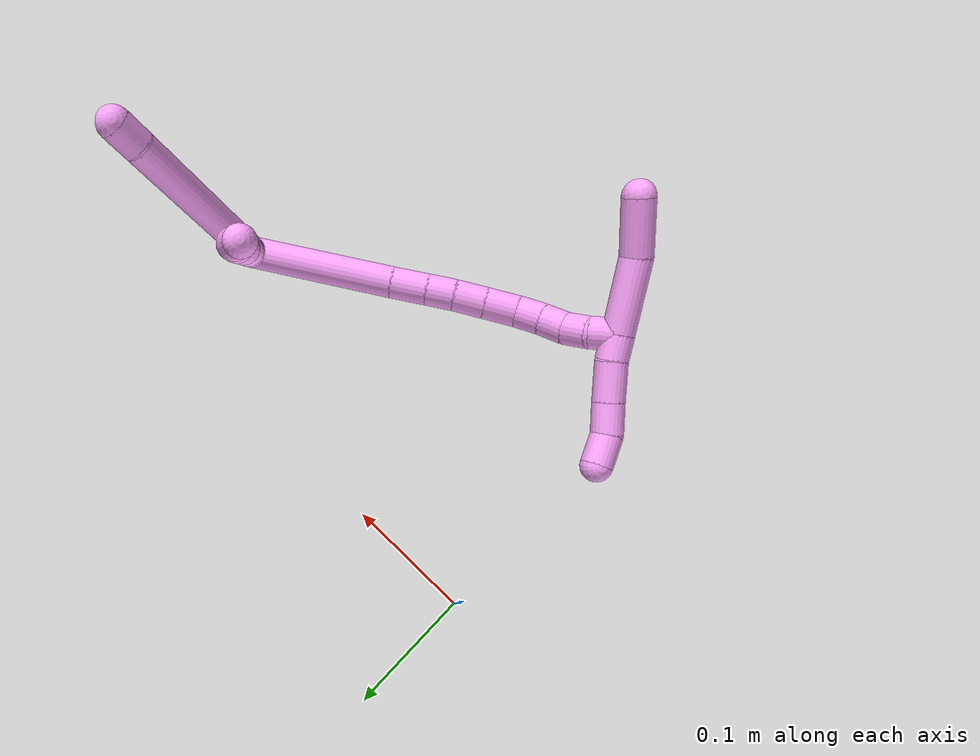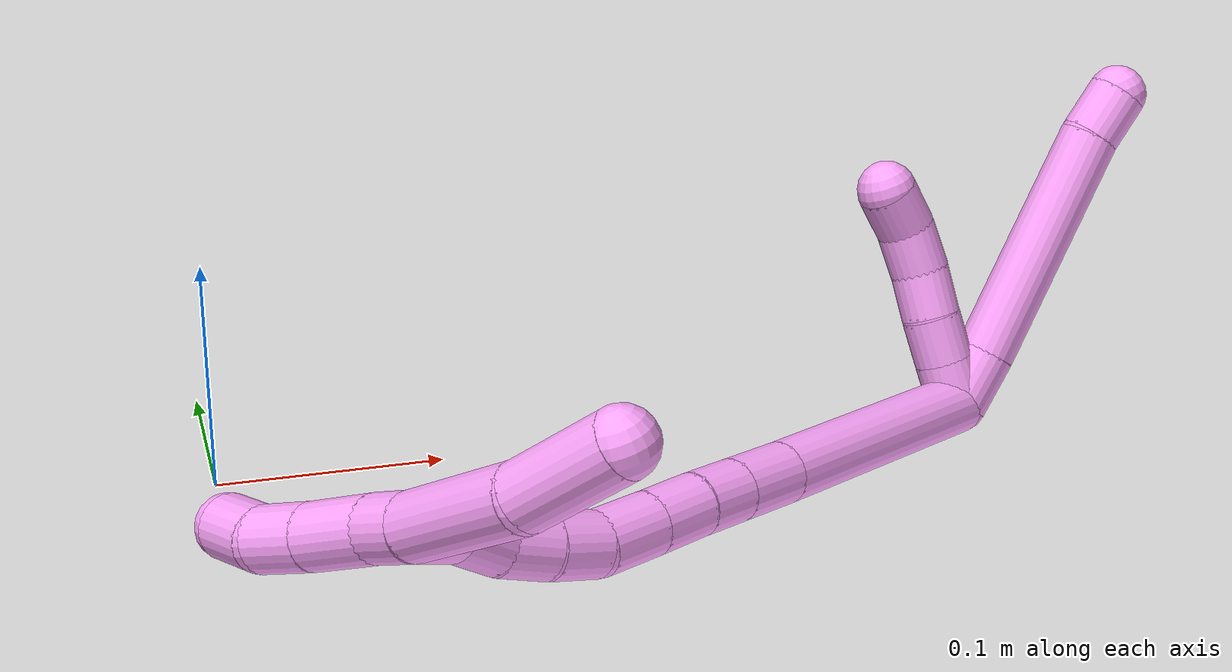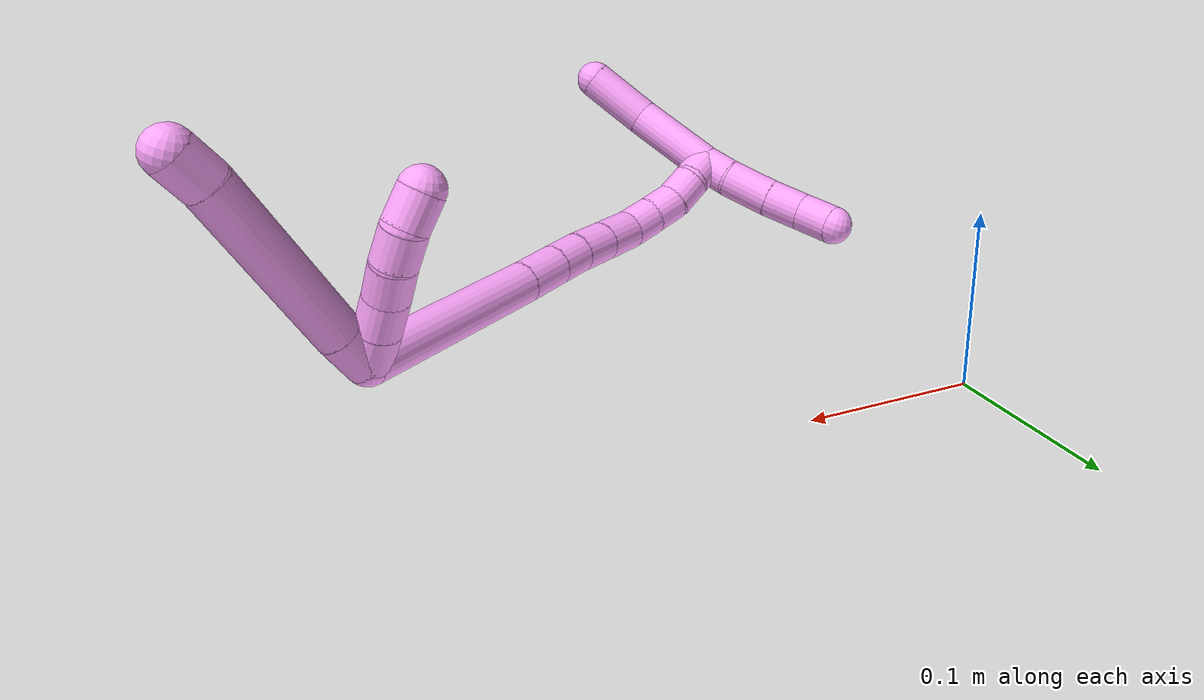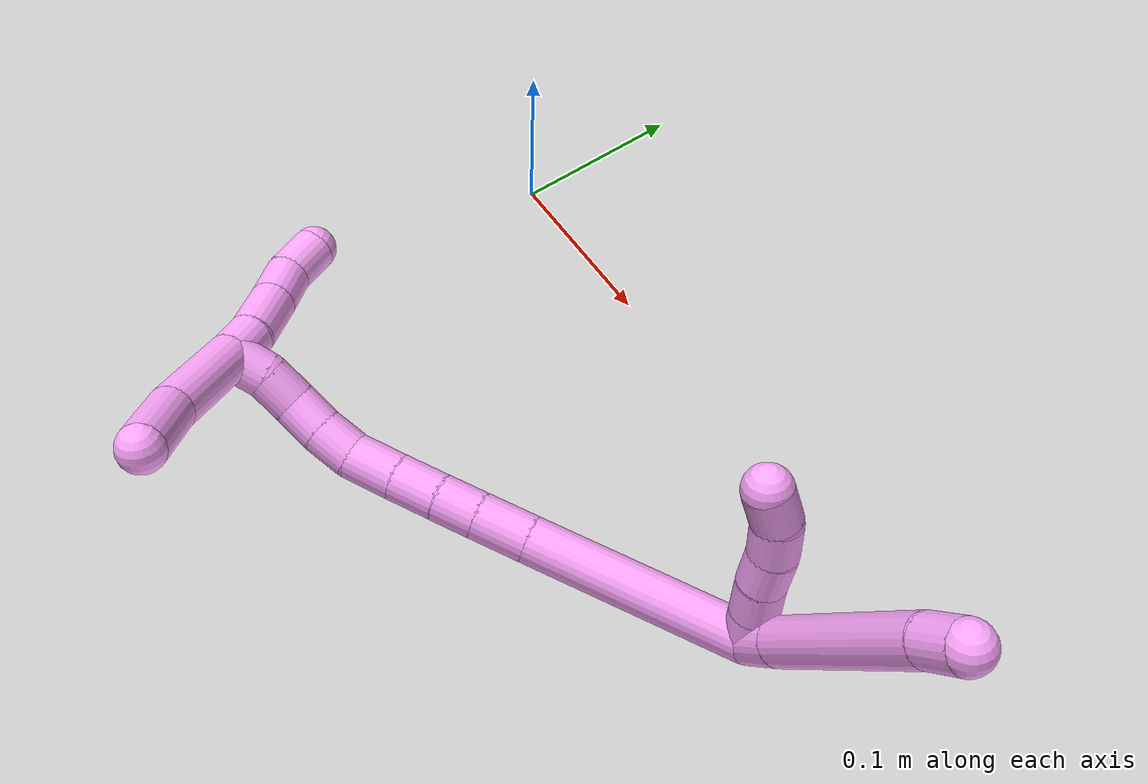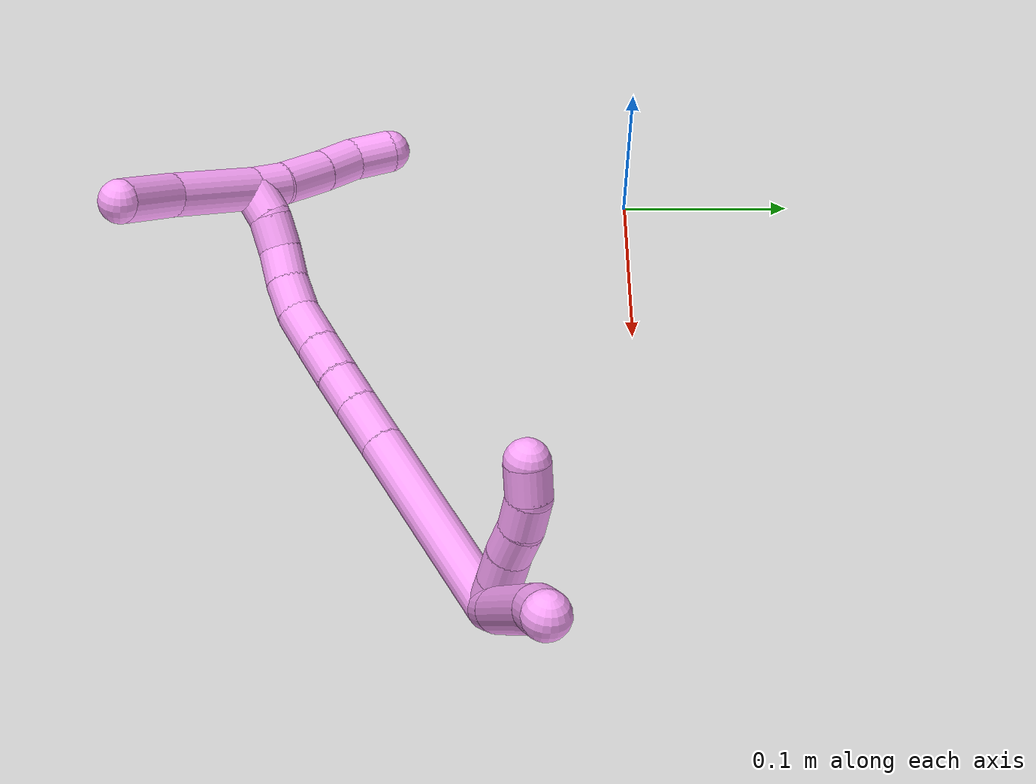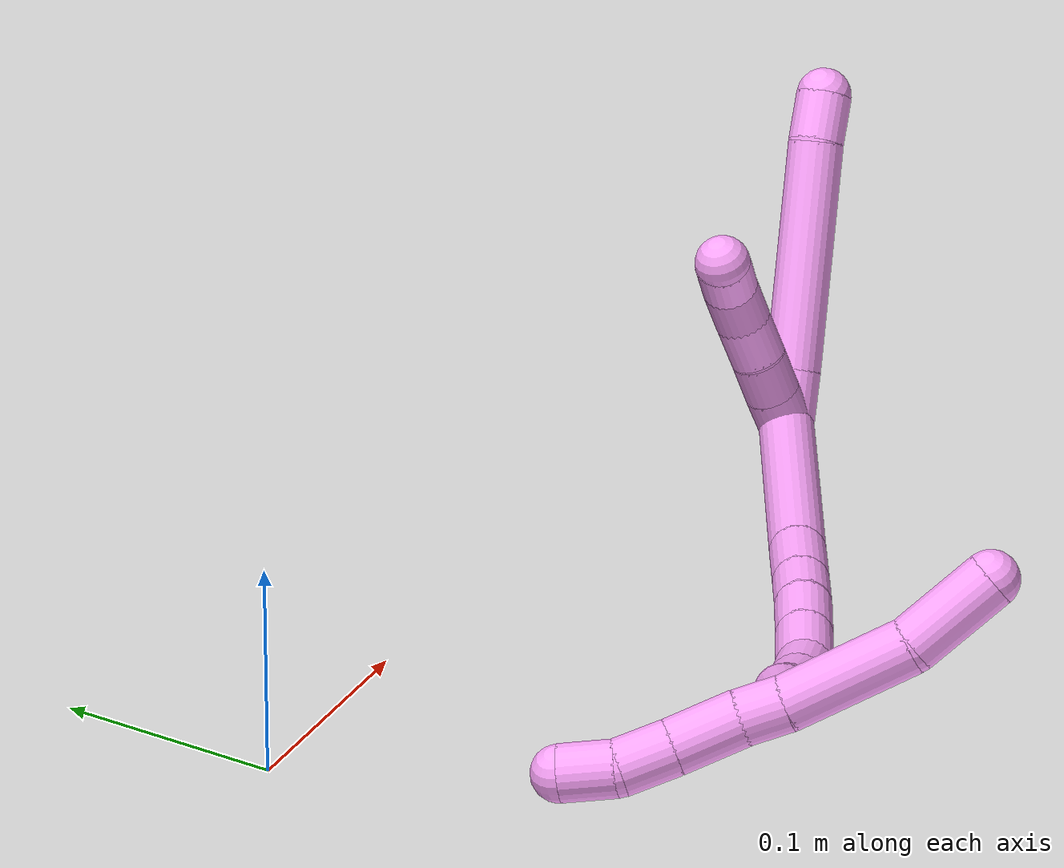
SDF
<sdf version="1.7">
 <world name="default">
  <model name="4">
   <static>0</static>
   <link name="4">
    <collision name="collision-cylinder-e_1_2_8">
     <pose>0.007929 0.00556 -0.007636 -2.51221 0.698289 -1.68249</pose>
     <geometry><cylinder><radius>0.0125</radius><length>0.024665</length></cylinder></geometry>
     <surface>
      <friction><ode><mu>1.16</mu><mu2>1.16</mu2><slip1>0</slip1><slip2>0</slip2></ode></friction>
      <contact><ode><kp>1e+06</kp><kd>1</kd><max_vel>0</max_vel><min_depth>0.001</min_depth></ode></contact>
     </surface>
    </collision>
    <visual name="visual-cylinder-e_1_2_8">
     <pose>0.007929 0.00556 -0.007636 -2.51221 0.698289 -1.68249</pose>
     <geometry><cylinder><radius>0.0125</radius><length>0.024665</length></cylinder></geometry>
     <material><ambient>1 0.65098 0.996078 1</ambient></material>
    </visual>
    <collision name="collision-cylinder-e_2_8_9">
     <pose>0.047034 0.033325 -0.049908 -2.5715 0.648469 -1.7075</pose>
     <geometry><cylinder><radius>0.0125</radius><length>0.103241</length></cylinder></geometry>
     <surface>
      <friction><ode><mu>1.16</mu><mu2>1.16</mu2><slip1>0</slip1><slip2>0</slip2></ode></friction>
      <contact><ode><kp>1e+06</kp><kd>1</kd><max_vel>0</max_vel><min_depth>0.001</min_depth></ode></contact>
     </surface>
    </collision>
    <visual name="visual-cylinder-e_2_8_9">
     <pose>0.047034 0.033325 -0.049908 -2.5715 0.648469 -1.7075</pose>
     <geometry><cylinder><radius>0.0125</radius><length>0.103241</length></cylinder></geometry>
     <material><ambient>1 0.65098 0.996078 1</ambient></material>
    </visual>
    <collision name="collision-cylinder-e_3_9_6">
     <pose>0.08556 0.060967 -0.090747 -2.42202 0.727756 -1.58315</pose>
     <geometry><cylinder><radius>0.0125</radius><length>0.022094</length></cylinder></geometry>
     <surface>
      <friction><ode><mu>1.16</mu><mu2>1.16</mu2><slip1>0</slip1><slip2>0</slip2></ode></friction>
      <contact><ode><kp>1e+06</kp><kd>1</kd><max_vel>0</max_vel><min_depth>0.001</min_depth></ode></contact>
     </surface>
    </collision>
    <visual name="visual-cylinder-e_3_9_6">
     <pose>0.08556 0.060967 -0.090747 -2.42202 0.727756 -1.58315</pose>
     <geometry><cylinder><radius>0.0125</radius><length>0.022094</length></cylinder></geometry>
     <material><ambient>1 0.65098 0.996078 1</ambient></material>
    </visual>
    <collision name="collision-cylinder-e_1_2_10">
     <pose>0.001454 -0.000859 -0.009856 3.05471 0.145967 2.0688</pose>
     <geometry><cylinder><radius>0.0125</radius><length>0.02</length></cylinder></geometry>
     <surface>
      <friction><ode><mu>1.16</mu><mu2>1.16</mu2><slip1>0</slip1><slip2>0</slip2></ode></friction>
      <contact><ode><kp>1e+06</kp><kd>1</kd><max_vel>0</max_vel><min_depth>0.001</min_depth></ode></contact>
     </surface>
    </collision>
    <visual name="visual-cylinder-e_1_2_10">
     <pose>0.001454 -0.000859 -0.009856 3.05471 0.145967 2.0688</pose>
     <geometry><cylinder><radius>0.0125</radius><length>0.02</length></cylinder></geometry>
     <material><ambient>1 0.65098 0.996078 1</ambient></material>
    </visual>
    <collision name="collision-cylinder-e_2_10_11">
     <pose>0.004255 -0.002335 -0.029602 3.07915 0.134987 2.27595</pose>
     <geometry><cylinder><radius>0.0125</radius><length>0.02</length></cylinder></geometry>
     <surface>
      <friction><ode><mu>1.16</mu><mu2>1.16</mu2><slip1>0</slip1><slip2>0</slip2></ode></friction>
      <contact><ode><kp>1e+06</kp><kd>1</kd><max_vel>0</max_vel><min_depth>0.001</min_depth></ode></contact>
     </surface>
    </collision>
    <visual name="visual-cylinder-e_2_10_11">
     <pose>0.004255 -0.002335 -0.029602 3.07915 0.134987 2.27595</pose>
     <geometry><cylinder><radius>0.0125</radius><length>0.02</length></cylinder></geometry>
     <material><ambient>1 0.65098 0.996078 1</ambient></material>
    </visual>
    <collision name="collision-cylinder-e_3_11_12">
     <pose>0.007926 -0.0037 -0.049189 3.06476 0.234679 2.5112</pose>
     <geometry><cylinder><radius>0.0125</radius><length>0.02</length></cylinder></geometry>
     <surface>
      <friction><ode><mu>1.16</mu><mu2>1.16</mu2><slip1>0</slip1><slip2>0</slip2></ode></friction>
      <contact><ode><kp>1e+06</kp><kd>1</kd><max_vel>0</max_vel><min_depth>0.001</min_depth></ode></contact>
     </surface>
    </collision>
    <visual name="visual-cylinder-e_3_11_12">
     <pose>0.007926 -0.0037 -0.049189 3.06476 0.234679 2.5112</pose>
     <geometry><cylinder><radius>0.0125</radius><length>0.02</length></cylinder></geometry>
     <material><ambient>1 0.65098 0.996078 1</ambient></material>
    </visual>
    <collision name="collision-cylinder-e_4_12_13">
     <pose>0.010912 -0.005081 -0.068845 3.07801 0.066084 1.60946</pose>
     <geometry><cylinder><radius>0.0125</radius><length>0.02</length></cylinder></geometry>
     <surface>
      <friction><ode><mu>1.16</mu><mu2>1.16</mu2><slip1>0</slip1><slip2>0</slip2></ode></friction>
      <contact><ode><kp>1e+06</kp><kd>1</kd><max_vel>0</max_vel><min_depth>0.001</min_depth></ode></contact>
     </surface>
    </collision>
    <visual name="visual-cylinder-e_4_12_13">
     <pose>0.010912 -0.005081 -0.068845 3.07801 0.066084 1.60946</pose>
     <geometry><cylinder><radius>0.0125</radius><length>0.02</length></cylinder></geometry>
     <material><ambient>1 0.65098 0.996078 1</ambient></material>
    </visual>
    <collision name="collision-cylinder-e_5_13_5">
     <pose>0.009124 -0.005909 -0.088496 3.12156 -0.247259 -2.98076</pose>
     <geometry><cylinder><radius>0.0125</radius><length>0.02</length></cylinder></geometry>
     <surface>
      <friction><ode><mu>1.16</mu><mu2>1.16</mu2><slip1>0</slip1><slip2>0</slip2></ode></friction>
      <contact><ode><kp>1e+06</kp><kd>1</kd><max_vel>0</max_vel><min_depth>0.001</min_depth></ode></contact>
     </surface>
    </collision>
    <visual name="visual-cylinder-e_5_13_5">
     <pose>0.009124 -0.005909 -0.088496 3.12156 -0.247259 -2.98076</pose>
     <geometry><cylinder><radius>0.0125</radius><length>0.02</length></cylinder></geometry>
     <material><ambient>1 0.65098 0.996078 1</ambient></material>
    </visual>
    <collision name="collision-cylinder-e_1_2_14">
     <pose>-0.055593 -0.010012 -0.014949 2.55145 -1.25779 -2.35002</pose>
     <geometry><cylinder><radius>0.0125</radius><length>0.116864</length></cylinder></geometry>
     <surface>
      <friction><ode><mu>1.16</mu><mu2>1.16</mu2><slip1>0</slip1><slip2>0</slip2></ode></friction>
      <contact><ode><kp>1e+06</kp><kd>1</kd><max_vel>0</max_vel><min_depth>0.001</min_depth></ode></contact>
     </surface>
    </collision>
    <visual name="visual-cylinder-e_1_2_14">
     <pose>-0.055593 -0.010012 -0.014949 2.55145 -1.25779 -2.35002</pose>
     <geometry><cylinder><radius>0.0125</radius><length>0.116864</length></cylinder></geometry>
     <material><ambient>1 0.65098 0.996078 1</ambient></material>
    </visual>
    <collision name="collision-cylinder-e_2_14_15">
     <pose>-0.124736 -0.022301 -0.03385 2.61898 -1.24612 -2.42901</pose>
     <geometry><cylinder><radius>0.0125</radius><length>0.028594</length></cylinder></geometry>
     <surface>
      <friction><ode><mu>1.16</mu><mu2>1.16</mu2><slip1>0</slip1><slip2>0</slip2></ode></friction>
      <contact><ode><kp>1e+06</kp><kd>1</kd><max_vel>0</max_vel><min_depth>0.001</min_depth></ode></contact>
     </surface>
    </collision>
    <visual name="visual-cylinder-e_2_14_15">
     <pose>-0.124736 -0.022301 -0.03385 2.61898 -1.24612 -2.42901</pose>
     <geometry><cylinder><radius>0.0125</radius><length>0.028594</length></cylinder></geometry>
     <material><ambient>1 0.65098 0.996078 1</ambient></material>
    </visual>
    <collision name="collision-cylinder-e_3_15_16">
     <pose>-0.148723 -0.026387 -0.040839 2.60422 -1.24416 -2.40833</pose>
     <geometry><cylinder><radius>0.0125</radius><length>0.022038</length></cylinder></geometry>
     <surface>
      <friction><ode><mu>1.16</mu><mu2>1.16</mu2><slip1>0</slip1><slip2>0</slip2></ode></friction>
      <contact><ode><kp>1e+06</kp><kd>1</kd><max_vel>0</max_vel><min_depth>0.001</min_depth></ode></contact>
     </surface>
    </collision>
    <visual name="visual-cylinder-e_3_15_16">
     <pose>-0.148723 -0.026387 -0.040839 2.60422 -1.24416 -2.40833</pose>
     <geometry><cylinder><radius>0.0125</radius><length>0.022038</length></cylinder></geometry>
     <material><ambient>1 0.65098 0.996078 1</ambient></material>
    </visual>
    <collision name="collision-cylinder-e_4_16_17">
     <pose>-0.170799 -0.030713 -0.046737 2.42021 -1.25453 -2.18206</pose>
     <geometry><cylinder><radius>0.0125</radius><length>0.024495</length></cylinder></geometry>
     <surface>
      <friction><ode><mu>1.16</mu><mu2>1.16</mu2><slip1>0</slip1><slip2>0</slip2></ode></friction>
      <contact><ode><kp>1e+06</kp><kd>1</kd><max_vel>0</max_vel><min_depth>0.001</min_depth></ode></contact>
     </surface>
    </collision>
    <visual name="visual-cylinder-e_4_16_17">
     <pose>-0.170799 -0.030713 -0.046737 2.42021 -1.25453 -2.18206</pose>
     <geometry><cylinder><radius>0.0125</radius><length>0.024495</length></cylinder></geometry>
     <material><ambient>1 0.65098 0.996078 1</ambient></material>
    </visual>
    <collision name="collision-cylinder-e_5_17_18">
     <pose>-0.194818 -0.035979 -0.05282 2.43517 -1.24105 -2.18912</pose>
     <geometry><cylinder><radius>0.0125</radius><length>0.026168</length></cylinder></geometry>
     <surface>
      <friction><ode><mu>1.16</mu><mu2>1.16</mu2><slip1>0</slip1><slip2>0</slip2></ode></friction>
      <contact><ode><kp>1e+06</kp><kd>1</kd><max_vel>0</max_vel><min_depth>0.001</min_depth></ode></contact>
     </surface>
    </collision>
    <visual name="visual-cylinder-e_5_17_18">
     <pose>-0.194818 -0.035979 -0.05282 2.43517 -1.24105 -2.18912</pose>
     <geometry><cylinder><radius>0.0125</radius><length>0.026168</length></cylinder></geometry>
     <material><ambient>1 0.65098 0.996078 1</ambient></material>
    </visual>
    <collision name="collision-cylinder-e_6_18_19">
     <pose>-0.216018 -0.041619 -0.061004 2.61403 -0.993758 -2.21741</pose>
     <geometry><cylinder><radius>0.0125</radius><length>0.021049</length></cylinder></geometry>
     <surface>
      <friction><ode><mu>1.16</mu><mu2>1.16</mu2><slip1>0</slip1><slip2>0</slip2></ode></friction>
      <contact><ode><kp>1e+06</kp><kd>1</kd><max_vel>0</max_vel><min_depth>0.001</min_depth></ode></contact>
     </surface>
    </collision>
    <visual name="visual-cylinder-e_6_18_19">
     <pose>-0.216018 -0.041619 -0.061004 2.61403 -0.993758 -2.21741</pose>
     <geometry><cylinder><radius>0.0125</radius><length>0.021049</length></cylinder></geometry>
     <material><ambient>1 0.65098 0.996078 1</ambient></material>
    </visual>
    <collision name="collision-cylinder-e_7_19_20">
     <pose>-0.232527 -0.047825 -0.071544 2.60551 -0.869699 -2.07362</pose>
     <geometry><cylinder><radius>0.0125</radius><length>0.020123</length></cylinder></geometry>
     <surface>
      <friction><ode><mu>1.16</mu><mu2>1.16</mu2><slip1>0</slip1><slip2>0</slip2></ode></friction>
      <contact><ode><kp>1e+06</kp><kd>1</kd><max_vel>0</max_vel><min_depth>0.001</min_depth></ode></contact>
     </surface>
    </collision>
    <visual name="visual-cylinder-e_7_19_20">
     <pose>-0.232527 -0.047825 -0.071544 2.60551 -0.869699 -2.07362</pose>
     <geometry><cylinder><radius>0.0125</radius><length>0.020123</length></cylinder></geometry>
     <material><ambient>1 0.65098 0.996078 1</ambient></material>
    </visual>
    <collision name="collision-cylinder-e_8_20_21">
     <pose>-0.247124 -0.052605 -0.084262 2.93916 -0.75877 -2.64272</pose>
     <geometry><cylinder><radius>0.0125</radius><length>0.020083</length></cylinder></geometry>
     <surface>
      <friction><ode><mu>1.16</mu><mu2>1.16</mu2><slip1>0</slip1><slip2>0</slip2></ode></friction>
      <contact><ode><kp>1e+06</kp><kd>1</kd><max_vel>0</max_vel><min_depth>0.001</min_depth></ode></contact>
     </surface>
    </collision>
    <visual name="visual-cylinder-e_8_20_21">
     <pose>-0.247124 -0.052605 -0.084262 2.93916 -0.75877 -2.64272</pose>
     <geometry><cylinder><radius>0.0125</radius><length>0.020083</length></cylinder></geometry>
     <material><ambient>1 0.65098 0.996078 1</ambient></material>
    </visual>
    <collision name="collision-cylinder-e_9_21_1">
     <pose>-0.262798 -0.054466 -0.096782 3.06816 -1.01899 -3.01029</pose>
     <geometry><cylinder><radius>0.0125</radius><length>0.020585</length></cylinder></geometry>
     <surface>
      <friction><ode><mu>1.16</mu><mu2>1.16</mu2><slip1>0</slip1><slip2>0</slip2></ode></friction>
      <contact><ode><kp>1e+06</kp><kd>1</kd><max_vel>0</max_vel><min_depth>0.001</min_depth></ode></contact>
     </surface>
    </collision>
    <visual name="visual-cylinder-e_9_21_1">
     <pose>-0.262798 -0.054466 -0.096782 3.06816 -1.01899 -3.01029</pose>
     <geometry><cylinder><radius>0.0125</radius><length>0.020585</length></cylinder></geometry>
     <material><ambient>1 0.65098 0.996078 1</ambient></material>
    </visual>
    <collision name="collision-cylinder-e_1_1_22">
     <pose>-0.270108 -0.06481 -0.101176 1.47197 0.144565 0.130982</pose>
     <geometry><cylinder><radius>0.0125</radius><length>0.020205</length></cylinder></geometry>
     <surface>
      <friction><ode><mu>1.16</mu><mu2>1.16</mu2><slip1>0</slip1><slip2>0</slip2></ode></friction>
      <contact><ode><kp>1e+06</kp><kd>1</kd><max_vel>0</max_vel><min_depth>0.001</min_depth></ode></contact>
     </surface>
    </collision>
    <visual name="visual-cylinder-e_1_1_22">
     <pose>-0.270108 -0.06481 -0.101176 1.47197 0.144565 0.130982</pose>
     <geometry><cylinder><radius>0.0125</radius><length>0.020205</length></cylinder></geometry>
     <material><ambient>1 0.65098 0.996078 1</ambient></material>
    </visual>
    <collision name="collision-cylinder-e_2_22_23">
     <pose>-0.268932 -0.090171 -0.09915 1.50343 -0.018116 -0.016935</pose>
     <geometry><cylinder><radius>0.0125</radius><length>0.030901</length></cylinder></geometry>
     <surface>
      <friction><ode><mu>1.16</mu><mu2>1.16</mu2><slip1>0</slip1><slip2>0</slip2></ode></friction>
      <contact><ode><kp>1e+06</kp><kd>1</kd><max_vel>0</max_vel><min_depth>0.001</min_depth></ode></contact>
     </surface>
    </collision>
    <visual name="visual-cylinder-e_2_22_23">
     <pose>-0.268932 -0.090171 -0.09915 1.50343 -0.018116 -0.016935</pose>
     <geometry><cylinder><radius>0.0125</radius><length>0.030901</length></cylinder></geometry>
     <material><ambient>1 0.65098 0.996078 1</ambient></material>
    </visual>
    <collision name="collision-cylinder-e_3_23_24">
     <pose>-0.269471 -0.117804 -0.098002 1.56197 -0.021229 -0.021042</pose>
     <geometry><cylinder><radius>0.0125</radius><length>0.024445</length></cylinder></geometry>
     <surface>
      <friction><ode><mu>1.16</mu><mu2>1.16</mu2><slip1>0</slip1><slip2>0</slip2></ode></friction>
      <contact><ode><kp>1e+06</kp><kd>1</kd><max_vel>0</max_vel><min_depth>0.001</min_depth></ode></contact>
     </surface>
    </collision>
    <visual name="visual-cylinder-e_3_23_24">
     <pose>-0.269471 -0.117804 -0.098002 1.56197 -0.021229 -0.021042</pose>
     <geometry><cylinder><radius>0.0125</radius><length>0.024445</length></cylinder></geometry>
     <material><ambient>1 0.65098 0.996078 1</ambient></material>
    </visual>
    <collision name="collision-cylinder-e_4_24_4">
     <pose>-0.26609 -0.141666 -0.098685 1.63863 0.302379 0.323263</pose>
     <geometry><cylinder><radius>0.0125</radius><length>0.024449</length></cylinder></geometry>
     <surface>
      <friction><ode><mu>1.16</mu><mu2>1.16</mu2><slip1>0</slip1><slip2>0</slip2></ode></friction>
      <contact><ode><kp>1e+06</kp><kd>1</kd><max_vel>0</max_vel><min_depth>0.001</min_depth></ode></contact>
     </surface>
    </collision>
    <visual name="visual-cylinder-e_4_24_4">
     <pose>-0.26609 -0.141666 -0.098685 1.63863 0.302379 0.323263</pose>
     <geometry><cylinder><radius>0.0125</radius><length>0.024449</length></cylinder></geometry>
     <material><ambient>1 0.65098 0.996078 1</ambient></material>
    </visual>
    <collision name="collision-cylinder-e_1_1_25">
     <pose>-0.274083 -0.027005 -0.108285 -1.78714 -0.088121 0.109554</pose>
     <geometry><cylinder><radius>0.0125</radius><length>0.057266</length></cylinder></geometry>
     <surface>
      <friction><ode><mu>1.16</mu><mu2>1.16</mu2><slip1>0</slip1><slip2>0</slip2></ode></friction>
      <contact><ode><kp>1e+06</kp><kd>1</kd><max_vel>0</max_vel><min_depth>0.001</min_depth></ode></contact>
     </surface>
    </collision>
    <visual name="visual-cylinder-e_1_1_25">
     <pose>-0.274083 -0.027005 -0.108285 -1.78714 -0.088121 0.109554</pose>
     <geometry><cylinder><radius>0.0125</radius><length>0.057266</length></cylinder></geometry>
     <material><ambient>1 0.65098 0.996078 1</ambient></material>
    </visual>
    <collision name="collision-cylinder-e_2_25_3">
     <pose>-0.273109 0.020842 -0.121099 -1.89378 0.16424 -0.227694</pose>
     <geometry><cylinder><radius>0.0125</radius><length>0.042734</length></cylinder></geometry>
     <surface>
      <friction><ode><mu>1.16</mu><mu2>1.16</mu2><slip1>0</slip1><slip2>0</slip2></ode></friction>
      <contact><ode><kp>1e+06</kp><kd>1</kd><max_vel>0</max_vel><min_depth>0.001</min_depth></ode></contact>
     </surface>
    </collision>
    <visual name="visual-cylinder-e_2_25_3">
     <pose>-0.273109 0.020842 -0.121099 -1.89378 0.16424 -0.227694</pose>
     <geometry><cylinder><radius>0.0125</radius><length>0.042734</length></cylinder></geometry>
     <material><ambient>1 0.65098 0.996078 1</ambient></material>
    </visual>
    <collision name="collision-sphere-3">
     <pose>-0.269616 0.040831 -0.127789 0 -0 0</pose>
     <geometry><sphere><radius>0.0125</radius></sphere></geometry>
     <surface>
      <friction><ode><mu>1.16</mu><mu2>1.16</mu2><slip1>0</slip1><slip2>0</slip2></ode></friction>
      <contact><ode><kp>1e+06</kp><kd>1</kd><max_vel>0</max_vel><min_depth>0.001</min_depth></ode></contact>
     </surface>
    </collision>
    <visual name="visual-sphere-3">
     <pose>-0.269616 0.040831 -0.127789 0 -0 0</pose>
     <geometry><sphere><radius>0.0125</radius></sphere></geometry>
     <material><ambient>1 0.65098 0.996078 1</ambient></material>
    </visual>
    <collision name="collision-sphere-25">
     <pose>-0.276603 0.000852 -0.114408 0 -0 0</pose>
     <geometry><sphere><radius>0.0125</radius></sphere></geometry>
     <surface>
      <friction><ode><mu>1.16</mu><mu2>1.16</mu2><slip1>0</slip1><slip2>0</slip2></ode></friction>
      <contact><ode><kp>1e+06</kp><kd>1</kd><max_vel>0</max_vel><min_depth>0.001</min_depth></ode></contact>
     </surface>
    </collision>
    <visual name="visual-sphere-25">
     <pose>-0.276603 0.000852 -0.114408 0 -0 0</pose>
     <geometry><sphere><radius>0.0125</radius></sphere></geometry>
     <material><ambient>1 0.65098 0.996078 1</ambient></material>
    </visual>
    <collision name="collision-sphere-4">
     <pose>-0.26245 -0.153309 -0.099476 0 -0 0</pose>
     <geometry><sphere><radius>0.0125</radius></sphere></geometry>
     <surface>
      <friction><ode><mu>1.16</mu><mu2>1.16</mu2><slip1>0</slip1><slip2>0</slip2></ode></friction>
      <contact><ode><kp>1e+06</kp><kd>1</kd><max_vel>0</max_vel><min_depth>0.001</min_depth></ode></contact>
     </surface>
    </collision>
    <visual name="visual-sphere-4">
     <pose>-0.26245 -0.153309 -0.099476 0 -0 0</pose>
     <geometry><sphere><radius>0.0125</radius></sphere></geometry>
     <material><ambient>1 0.65098 0.996078 1</ambient></material>
    </visual>
    <collision name="collision-sphere-24">
     <pose>-0.269731 -0.130023 -0.097894 0 -0 0</pose>
     <geometry><sphere><radius>0.0125</radius></sphere></geometry>
     <surface>
      <friction><ode><mu>1.16</mu><mu2>1.16</mu2><slip1>0</slip1><slip2>0</slip2></ode></friction>
      <contact><ode><kp>1e+06</kp><kd>1</kd><max_vel>0</max_vel><min_depth>0.001</min_depth></ode></contact>
     </surface>
    </collision>
    <visual name="visual-sphere-24">
     <pose>-0.269731 -0.130023 -0.097894 0 -0 0</pose>
     <geometry><sphere><radius>0.0125</radius></sphere></geometry>
     <material><ambient>1 0.65098 0.996078 1</ambient></material>
    </visual>
    <collision name="collision-sphere-23">
     <pose>-0.269212 -0.105584 -0.09811 0 -0 0</pose>
     <geometry><sphere><radius>0.0125</radius></sphere></geometry>
     <surface>
      <friction><ode><mu>1.16</mu><mu2>1.16</mu2><slip1>0</slip1><slip2>0</slip2></ode></friction>
      <contact><ode><kp>1e+06</kp><kd>1</kd><max_vel>0</max_vel><min_depth>0.001</min_depth></ode></contact>
     </surface>
    </collision>
    <visual name="visual-sphere-23">
     <pose>-0.269212 -0.105584 -0.09811 0 -0 0</pose>
     <geometry><sphere><radius>0.0125</radius></sphere></geometry>
     <material><ambient>1 0.65098 0.996078 1</ambient></material>
    </visual>
    <collision name="collision-sphere-22">
     <pose>-0.268652 -0.074758 -0.10019 0 -0 0</pose>
     <geometry><sphere><radius>0.0125</radius></sphere></geometry>
     <surface>
      <friction><ode><mu>1.16</mu><mu2>1.16</mu2><slip1>0</slip1><slip2>0</slip2></ode></friction>
      <contact><ode><kp>1e+06</kp><kd>1</kd><max_vel>0</max_vel><min_depth>0.001</min_depth></ode></contact>
     </surface>
    </collision>
    <visual name="visual-sphere-22">
     <pose>-0.268652 -0.074758 -0.10019 0 -0 0</pose>
     <geometry><sphere><radius>0.0125</radius></sphere></geometry>
     <material><ambient>1 0.65098 0.996078 1</ambient></material>
    </visual>
    <collision name="collision-sphere-1">
     <pose>-0.271563 -0.054862 -0.102163 0 -0 0</pose>
     <geometry><sphere><radius>0.0125</radius></sphere></geometry>
     <surface>
      <friction><ode><mu>1.16</mu><mu2>1.16</mu2><slip1>0</slip1><slip2>0</slip2></ode></friction>
      <contact><ode><kp>1e+06</kp><kd>1</kd><max_vel>0</max_vel><min_depth>0.001</min_depth></ode></contact>
     </surface>
    </collision>
    <visual name="visual-sphere-1">
     <pose>-0.271563 -0.054862 -0.102163 0 -0 0</pose>
     <geometry><sphere><radius>0.0125</radius></sphere></geometry>
     <material><ambient>1 0.65098 0.996078 1</ambient></material>
    </visual>
    <collision name="collision-sphere-21">
     <pose>-0.254033 -0.05407 -0.091401 0 -0 0</pose>
     <geometry><sphere><radius>0.0125</radius></sphere></geometry>
     <surface>
      <friction><ode><mu>1.16</mu><mu2>1.16</mu2><slip1>0</slip1><slip2>0</slip2></ode></friction>
      <contact><ode><kp>1e+06</kp><kd>1</kd><max_vel>0</max_vel><min_depth>0.001</min_depth></ode></contact>
     </surface>
    </collision>
    <visual name="visual-sphere-21">
     <pose>-0.254033 -0.05407 -0.091401 0 -0 0</pose>
     <geometry><sphere><radius>0.0125</radius></sphere></geometry>
     <material><ambient>1 0.65098 0.996078 1</ambient></material>
    </visual>
    <collision name="collision-sphere-11">
     <pose>0.005601 -0.002954 -0.039492 0 -0 0</pose>
     <geometry><sphere><radius>0.0125</radius></sphere></geometry>
     <surface>
      <friction><ode><mu>1.16</mu><mu2>1.16</mu2><slip1>0</slip1><slip2>0</slip2></ode></friction>
      <contact><ode><kp>1e+06</kp><kd>1</kd><max_vel>0</max_vel><min_depth>0.001</min_depth></ode></contact>
     </surface>
    </collision>
    <visual name="visual-sphere-11">
     <pose>0.005601 -0.002954 -0.039492 0 -0 0</pose>
     <geometry><sphere><radius>0.0125</radius></sphere></geometry>
     <material><ambient>1 0.65098 0.996078 1</ambient></material>
    </visual>
    <collision name="collision-sphere-10">
     <pose>0.002909 -0.001717 -0.019713 0 -0 0</pose>
     <geometry><sphere><radius>0.0125</radius></sphere></geometry>
     <surface>
      <friction><ode><mu>1.16</mu><mu2>1.16</mu2><slip1>0</slip1><slip2>0</slip2></ode></friction>
      <contact><ode><kp>1e+06</kp><kd>1</kd><max_vel>0</max_vel><min_depth>0.001</min_depth></ode></contact>
     </surface>
    </collision>
    <visual name="visual-sphere-10">
     <pose>0.002909 -0.001717 -0.019713 0 -0 0</pose>
     <geometry><sphere><radius>0.0125</radius></sphere></geometry>
     <material><ambient>1 0.65098 0.996078 1</ambient></material>
    </visual>
    <collision name="collision-sphere-6">
     <pose>0.092908 0.066403 -0.09695 0 -0 0</pose>
     <geometry><sphere><radius>0.0125</radius></sphere></geometry>
     <surface>
      <friction><ode><mu>1.16</mu><mu2>1.16</mu2><slip1>0</slip1><slip2>0</slip2></ode></friction>
      <contact><ode><kp>1e+06</kp><kd>1</kd><max_vel>0</max_vel><min_depth>0.001</min_depth></ode></contact>
     </surface>
    </collision>
    <visual name="visual-sphere-6">
     <pose>0.092908 0.066403 -0.09695 0 -0 0</pose>
     <geometry><sphere><radius>0.0125</radius></sphere></geometry>
     <material><ambient>1 0.65098 0.996078 1</ambient></material>
    </visual>
    <collision name="collision-sphere-9">
     <pose>0.078211 0.05553 -0.084543 0 -0 0</pose>
     <geometry><sphere><radius>0.0125</radius></sphere></geometry>
     <surface>
      <friction><ode><mu>1.16</mu><mu2>1.16</mu2><slip1>0</slip1><slip2>0</slip2></ode></friction>
      <contact><ode><kp>1e+06</kp><kd>1</kd><max_vel>0</max_vel><min_depth>0.001</min_depth></ode></contact>
     </surface>
    </collision>
    <visual name="visual-sphere-9">
     <pose>0.078211 0.05553 -0.084543 0 -0 0</pose>
     <geometry><sphere><radius>0.0125</radius></sphere></geometry>
     <material><ambient>1 0.65098 0.996078 1</ambient></material>
    </visual>
    <collision name="collision-sphere-2">
     <geometry><sphere><radius>0.0125</radius></sphere></geometry>
     <surface>
      <friction><ode><mu>1.16</mu><mu2>1.16</mu2><slip1>0</slip1><slip2>0</slip2></ode></friction>
      <contact><ode><kp>1e+06</kp><kd>1</kd><max_vel>0</max_vel><min_depth>0.001</min_depth></ode></contact>
     </surface>
    </collision>
    <visual name="visual-sphere-2">
     <geometry><sphere><radius>0.0125</radius></sphere></geometry>
     <material><ambient>1 0.65098 0.996078 1</ambient></material>
    </visual>
    <collision name="collision-sphere-19">
     <pose>-0.224839 -0.04451 -0.065965 0 -0 0</pose>
     <geometry><sphere><radius>0.0125</radius></sphere></geometry>
     <surface>
      <friction><ode><mu>1.16</mu><mu2>1.16</mu2><slip1>0</slip1><slip2>0</slip2></ode></friction>
      <contact><ode><kp>1e+06</kp><kd>1</kd><max_vel>0</max_vel><min_depth>0.001</min_depth></ode></contact>
     </surface>
    </collision>
    <visual name="visual-sphere-19">
     <pose>-0.224839 -0.04451 -0.065965 0 -0 0</pose>
     <geometry><sphere><radius>0.0125</radius></sphere></geometry>
     <material><ambient>1 0.65098 0.996078 1</ambient></material>
    </visual>
    <collision name="collision-sphere-8">
     <pose>0.015857 0.011121 -0.015272 0 -0 0</pose>
     <geometry><sphere><radius>0.0125</radius></sphere></geometry>
     <surface>
      <friction><ode><mu>1.16</mu><mu2>1.16</mu2><slip1>0</slip1><slip2>0</slip2></ode></friction>
      <contact><ode><kp>1e+06</kp><kd>1</kd><max_vel>0</max_vel><min_depth>0.001</min_depth></ode></contact>
     </surface>
    </collision>
    <visual name="visual-sphere-8">
     <pose>0.015857 0.011121 -0.015272 0 -0 0</pose>
     <geometry><sphere><radius>0.0125</radius></sphere></geometry>
     <material><ambient>1 0.65098 0.996078 1</ambient></material>
    </visual>
    <collision name="collision-sphere-12">
     <pose>0.010251 -0.004447 -0.058887 0 -0 0</pose>
     <geometry><sphere><radius>0.0125</radius></sphere></geometry>
     <surface>
      <friction><ode><mu>1.16</mu><mu2>1.16</mu2><slip1>0</slip1><slip2>0</slip2></ode></friction>
      <contact><ode><kp>1e+06</kp><kd>1</kd><max_vel>0</max_vel><min_depth>0.001</min_depth></ode></contact>
     </surface>
    </collision>
    <visual name="visual-sphere-12">
     <pose>0.010251 -0.004447 -0.058887 0 -0 0</pose>
     <geometry><sphere><radius>0.0125</radius></sphere></geometry>
     <material><ambient>1 0.65098 0.996078 1</ambient></material>
    </visual>
    <collision name="collision-sphere-13">
     <pose>0.011572 -0.005715 -0.078803 0 -0 0</pose>
     <geometry><sphere><radius>0.0125</radius></sphere></geometry>
     <surface>
      <friction><ode><mu>1.16</mu><mu2>1.16</mu2><slip1>0</slip1><slip2>0</slip2></ode></friction>
      <contact><ode><kp>1e+06</kp><kd>1</kd><max_vel>0</max_vel><min_depth>0.001</min_depth></ode></contact>
     </surface>
    </collision>
    <visual name="visual-sphere-13">
     <pose>0.011572 -0.005715 -0.078803 0 -0 0</pose>
     <geometry><sphere><radius>0.0125</radius></sphere></geometry>
     <material><ambient>1 0.65098 0.996078 1</ambient></material>
    </visual>
    <collision name="collision-sphere-5">
     <pose>0.006677 -0.006103 -0.09819 0 -0 0</pose>
     <geometry><sphere><radius>0.0125</radius></sphere></geometry>
     <surface>
      <friction><ode><mu>1.16</mu><mu2>1.16</mu2><slip1>0</slip1><slip2>0</slip2></ode></friction>
      <contact><ode><kp>1e+06</kp><kd>1</kd><max_vel>0</max_vel><min_depth>0.001</min_depth></ode></contact>
     </surface>
    </collision>
    <visual name="visual-sphere-5">
     <pose>0.006677 -0.006103 -0.09819 0 -0 0</pose>
     <geometry><sphere><radius>0.0125</radius></sphere></geometry>
     <material><ambient>1 0.65098 0.996078 1</ambient></material>
    </visual>
    <collision name="collision-sphere-14">
     <pose>-0.111186 -0.020025 -0.029898 0 -0 0</pose>
     <geometry><sphere><radius>0.0125</radius></sphere></geometry>
     <surface>
      <friction><ode><mu>1.16</mu><mu2>1.16</mu2><slip1>0</slip1><slip2>0</slip2></ode></friction>
      <contact><ode><kp>1e+06</kp><kd>1</kd><max_vel>0</max_vel><min_depth>0.001</min_depth></ode></contact>
     </surface>
    </collision>
    <visual name="visual-sphere-14">
     <pose>-0.111186 -0.020025 -0.029898 0 -0 0</pose>
     <geometry><sphere><radius>0.0125</radius></sphere></geometry>
     <material><ambient>1 0.65098 0.996078 1</ambient></material>
    </visual>
    <collision name="collision-sphere-15">
     <pose>-0.138286 -0.024578 -0.037802 0 -0 0</pose>
     <geometry><sphere><radius>0.0125</radius></sphere></geometry>
     <surface>
      <friction><ode><mu>1.16</mu><mu2>1.16</mu2><slip1>0</slip1><slip2>0</slip2></ode></friction>
      <contact><ode><kp>1e+06</kp><kd>1</kd><max_vel>0</max_vel><min_depth>0.001</min_depth></ode></contact>
     </surface>
    </collision>
    <visual name="visual-sphere-15">
     <pose>-0.138286 -0.024578 -0.037802 0 -0 0</pose>
     <geometry><sphere><radius>0.0125</radius></sphere></geometry>
     <material><ambient>1 0.65098 0.996078 1</ambient></material>
    </visual>
    <collision name="collision-sphere-16">
     <pose>-0.159159 -0.028197 -0.043876 0 -0 0</pose>
     <geometry><sphere><radius>0.0125</radius></sphere></geometry>
     <surface>
      <friction><ode><mu>1.16</mu><mu2>1.16</mu2><slip1>0</slip1><slip2>0</slip2></ode></friction>
      <contact><ode><kp>1e+06</kp><kd>1</kd><max_vel>0</max_vel><min_depth>0.001</min_depth></ode></contact>
     </surface>
    </collision>
    <visual name="visual-sphere-16">
     <pose>-0.159159 -0.028197 -0.043876 0 -0 0</pose>
     <geometry><sphere><radius>0.0125</radius></sphere></geometry>
     <material><ambient>1 0.65098 0.996078 1</ambient></material>
    </visual>
    <collision name="collision-sphere-17">
     <pose>-0.182439 -0.033228 -0.049597 0 -0 0</pose>
     <geometry><sphere><radius>0.0125</radius></sphere></geometry>
     <surface>
      <friction><ode><mu>1.16</mu><mu2>1.16</mu2><slip1>0</slip1><slip2>0</slip2></ode></friction>
      <contact><ode><kp>1e+06</kp><kd>1</kd><max_vel>0</max_vel><min_depth>0.001</min_depth></ode></contact>
     </surface>
    </collision>
    <visual name="visual-sphere-17">
     <pose>-0.182439 -0.033228 -0.049597 0 -0 0</pose>
     <geometry><sphere><radius>0.0125</radius></sphere></geometry>
     <material><ambient>1 0.65098 0.996078 1</ambient></material>
    </visual>
    <collision name="collision-sphere-18">
     <pose>-0.207198 -0.038729 -0.056043 0 -0 0</pose>
     <geometry><sphere><radius>0.0125</radius></sphere></geometry>
     <surface>
      <friction><ode><mu>1.16</mu><mu2>1.16</mu2><slip1>0</slip1><slip2>0</slip2></ode></friction>
      <contact><ode><kp>1e+06</kp><kd>1</kd><max_vel>0</max_vel><min_depth>0.001</min_depth></ode></contact>
     </surface>
    </collision>
    <visual name="visual-sphere-18">
     <pose>-0.207198 -0.038729 -0.056043 0 -0 0</pose>
     <geometry><sphere><radius>0.0125</radius></sphere></geometry>
     <material><ambient>1 0.65098 0.996078 1</ambient></material>
    </visual>
    <collision name="collision-sphere-20">
     <pose>-0.240215 -0.05114 -0.077124 0 -0 0</pose>
     <geometry><sphere><radius>0.0125</radius></sphere></geometry>
     <surface>
      <friction><ode><mu>1.16</mu><mu2>1.16</mu2><slip1>0</slip1><slip2>0</slip2></ode></friction>
      <contact><ode><kp>1e+06</kp><kd>1</kd><max_vel>0</max_vel><min_depth>0.001</min_depth></ode></contact>
     </surface>
    </collision>
    <visual name="visual-sphere-20">
     <pose>-0.240215 -0.05114 -0.077124 0 -0 0</pose>
     <geometry><sphere><radius>0.0125</radius></sphere></geometry>
     <material><ambient>1 0.65098 0.996078 1</ambient></material>
    </visual>
    <inertial>
     <pose>-0.118445 -0.019503 -0.061478 0 -0 0</pose>
     <mass>0.75</mass>
     <inertia>
      <ixx>-0.000135</ixx>
      <ixy>0</ixy>
      <ixz>0</ixz>
      <iyy>8.2e-05</iyy>
      <iyz>0</iyz>
      <izz>2.6e-05</izz>
     </inertia>
    </inertial>
   </link>
   <pose>0.308698 -0.087226 0.037791 2.85799 -0.158326 0.761738</pose>
  </model>
 </world>
</sdf>
